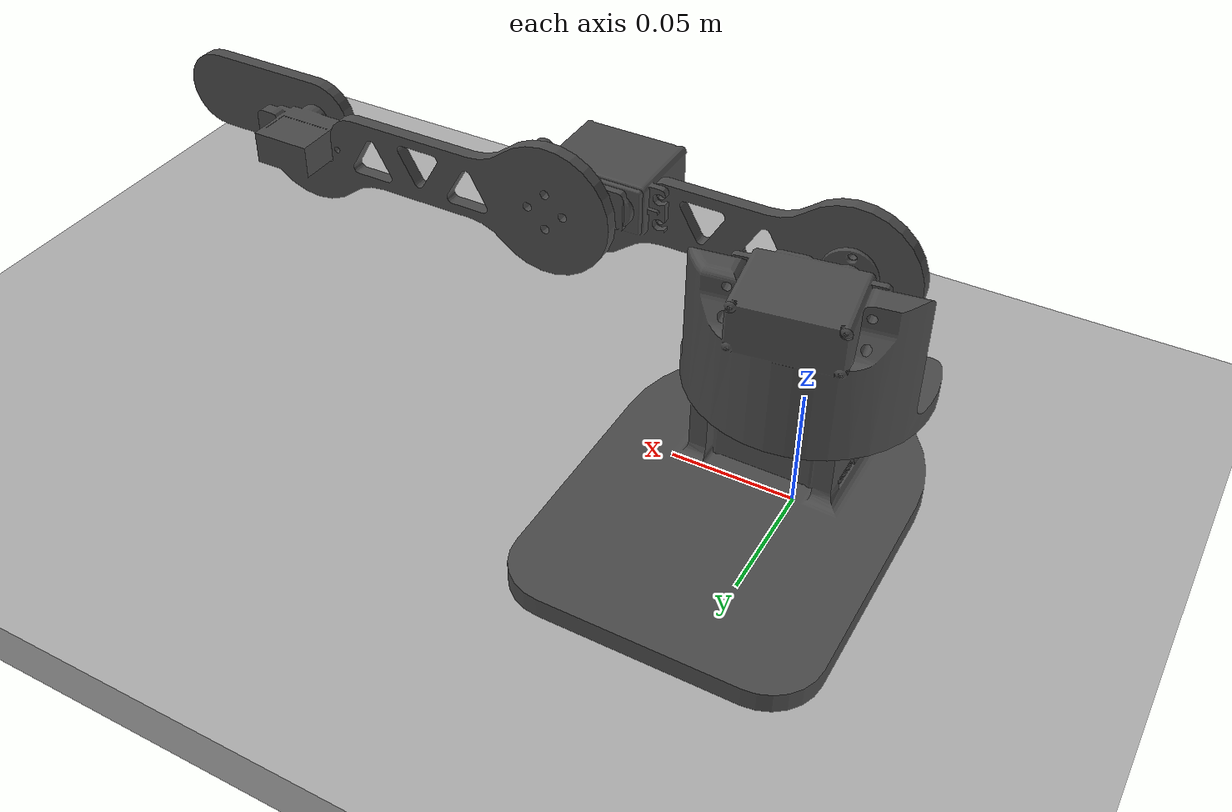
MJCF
<mujoco model="arm_urdf">
  <compiler angle="radian"/>

  <asset>
    <texture type="skybox" builtin="gradient" rgb1="0.4 0.6 0.8" rgb2="0 0 0" width="512" height="512"/>
    <mesh name="base_link" file="arm_urdf/meshes/base_link.STL"/>
    <mesh name="J1_Link" file="arm_urdf/meshes/J1_Link.STL"/>
    <mesh name="Arm1" file="arm_urdf/meshes/Arm1.STL"/>
    <mesh name="Arm2" file="arm_urdf/meshes/Arm2.STL"/>
    <mesh name="End_Effector" file="arm_urdf/meshes/End_Effector.STL"/>
  </asset>
  <option timestep="0.001" integrator="implicit"/>
  <worldbody>
    <light diffuse=".8 .8 .8" pos="0 0 100" dir="0 0 -1"/>
    <geom type="box" rgba="0.7 0.7 0.7 1" size="10 10 0.01"/>
    <body name="Plane" pos="0 0 0.01">
    <body name="Base" pos="0.06935 0.10429 0">
      <geom type="mesh" rgba="0.29804 0.29804 0.29804 1" mesh="base_link"/>
      <body name="J1_Link" pos="-0.06935 -0.10429 0.051119" quat="1 0 0 0" >
        <inertial pos="-0.0034326 0.0233874 0.0250484" quat="-0.302104 0.676338 -0.208014 0.638773" mass="0.138685" diaginertia="8.69427e-05 6.90629e-05 4.69039e-05"/>
        <joint name="J1" pos="0 0 0" axis="0 0 -1" range="-4.01425 0.3490"/>
        <geom type="mesh" rgba="0.298039 0.298039 0.298039 1" mesh="J1_Link"/>
        <body name="Arm1" pos="-0.010451 0.0021323 0.0475" quat="1 0 0 0">
          <inertial pos="0.071392 -0.0068575 0.00059964" quat="0.488626 0.508499 0.53065 0.470195" mass="0.057216" diaginertia="5.09875e-05 5.08079e-05 7.53583e-06"/>
          <joint name="Arm1_Joint" pos="0 0 0" axis="0 -1 0" range="0.366519 3.5081"/>
          <geom type="mesh" rgba="0.29804 0.29804 0.29804 1" mesh="Arm1"/>
          <body name="Arm2" pos="0.1033 0.014919 0.0025" quat="1 0 0 0">
            <inertial pos="0.052897 0.0041803 -0.0020241" quat="0.478701 0.520888 0.51982 0.478862" mass="0.029766" diaginertia="4.6255e-05 4.38397e-05 3.30644e-06"/>
            <joint name="Arm2_joint" pos="0 0 0" axis="0 1 0" range="-1.91986 2.0943 "/>
            <geom type="mesh" rgba="0.29804 0.29804 0.29804 1" mesh="Arm2"/>
            <body name="End_Effector" pos="0.1091 0 -0.0014" quat="0 1 0 0">
              <inertial pos="0.024827 0.011528 0.00012821" quat="0.49557 0.483033 0.512683 0.508178" mass="0.013454" diaginertia="6.34058e-06 5.61676e-06 9.91559e-07"/>
              <joint name="End_Effector_joint" pos="0 0 0" axis="0 1 0" range="-1.571 1.571"/>
              <geom type="mesh" rgba="0.29804 0.29804 0.29804 1" mesh="End_Effector"/>
              <site name="pen_tip" pos="0.045 0.0225 0.0015" size="0.00375" rgba="1 0 0 1"/>
              </body>
            </body>
          </body>
        </body>
      </body>
    </body>
  </worldbody>

    <actuator>
    <position name="act_base_yaw" joint="J1" kp="10" kv =".5" ctrlrange="-4.01425 0.3490"/>
    <position name="act_shoulder" joint="Arm1_Joint" kp="10" kv =".5" ctrlrange="0.366519 3.5081"/>
    <position name="act_elbow" joint="Arm2_joint" kp="10" kv =".5" ctrlrange="-1.91986 2.0943"/>
    <position name="act_wrist" joint="End_Effector_joint" kp="10" kv =".5" ctrlrange="-1.571 1.571"/>
  </actuator>

</mujoco>
